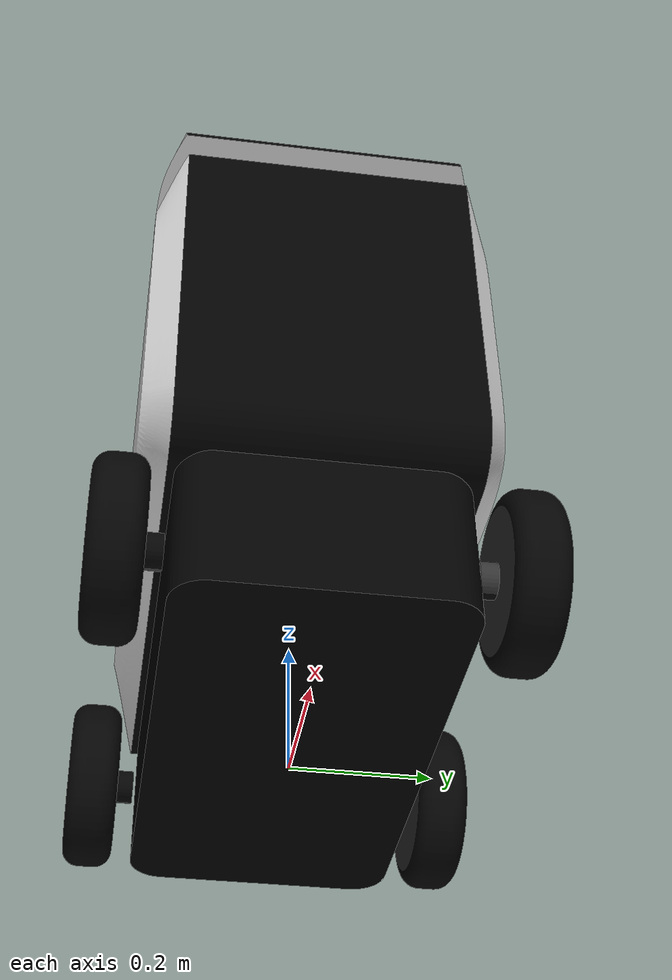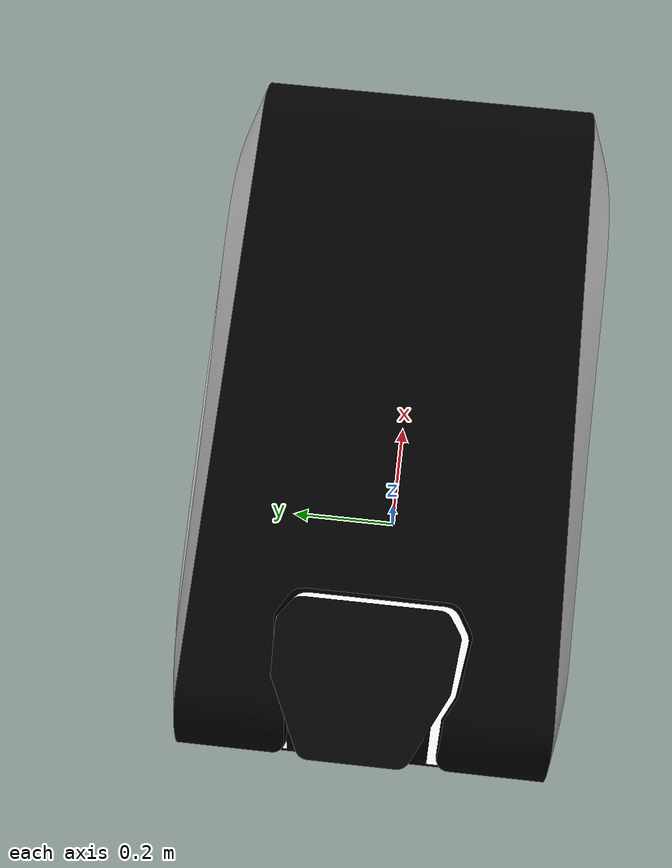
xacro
<?xml version="1.0"?>

<robot name="deliverybot" xmlns:xacro="http://wiki.ros.org/xacro">
    <xacro:include
        filename="$(find deliverybot_description)/models/deliverybot/xacro/deliverybot_joints.xacro" />
    <xacro:include
        filename="$(find deliverybot_description)/models/deliverybot/xacro/deliverybot_control.xacro" />
    <xacro:property name="robot_namespace" value="/deliverybot" />

    <!-- Gazebo Plugins -->
    <gazebo>
        <plugin name="gazebo_ros2_control" filename="libgazebo_ros2_control.so">
            <robotNamespace>${robot_namespace}</robotNamespace>
            <parameters>$(find deliverybot_description)/models/deliverybot/config/controllers.yaml</parameters>
        </plugin>
    </gazebo>

    <!-- Math Constants -->
    <xacro:property name="deg_to_rad" value="0.01745329251994329577" />
    <xacro:property name="steer_limhigh_deg" value="30" />
    <xacro:property name="steer_limlow_deg" value="-30" />
    <!-- Robot Base Dimensions -->
    <xacro:property name="base_length" value="0.85" />
    <xacro:property name="base_width" value="0.35" />
    <xacro:property name="base_mass" value="72.3" />

    <!-- Wheel Link Dimensions -->
    <xacro:property name="wheel_radius" value="0.125" />
    <xacro:property name="wheel_thickness" value="0.1" />
    <xacro:property name="wheel_mass" value="3.5" />

    <!-- Steering Link Dimensions -->
    <xacro:property name="steer_radius" value="0.1" />
    <xacro:property name="steer_thickness" value="0.02" />
    <xacro:property name="steer_mass" value="1" />

    <!-- Velocity and Movement -->
    <xacro:property name="velocity_limlow" value="-5.0" />
    <xacro:property name="velocity_limhigh" value="8.0" />

    <!-- Axle Positions -->
    <xacro:property name="axle_length_offset" value="0.125" />
    <xacro:property name="axle_width_offset" value="0.1" />
    <xacro:property name="steer_offset" value="-0.15" />

    <!-- Dummy Link -->
    <link name="base_footprint">
        <origin xyz="0 0 0" rpy="0 0 0" />
    </link>

    <!-- Base Link -->
    <link name="base_link">
        <visual>
            <origin xyz="0 0 0" rpy="0 0 ${-pi/2}" />
            <geometry>
                <mesh
                    filename="package://deliverybot_description/models/deliverybot/meshes/EVA_Body.dae" />
            </geometry>
        </visual>
        <collision>
            <origin xyz="0 0 0" rpy="0 0 ${-pi/2}" />
            <geometry>
                <mesh
                    filename="package://deliverybot_description/models/deliverybot/meshes/EVA_Body.dae" />
            </geometry>
        </collision>
        <inertial>
            <origin xyz="0 0 0" rpy="0 0 ${-pi/2}" />
            <mass value="64.3" />
            <inertia ixx="8.303" ixy="0" ixz="0" iyy="5.468" iyz="0.00" izz="6.02" />
        </inertial>
    </link>
    <!-- Dummy Joint -->
    <joint name="base_joint" type="fixed">
        <origin xyz="0 0 0.470" rpy="0 0 0" />
        <parent link="base_footprint" />
        <child link="base_link" />
    </joint>

    <link name="center_steer_link">
        <inertial>
            <origin rpy="0 0 0" xyz="0 0 0" />
            <mass value="${steer_mass}" />
            <inertia
                ixx="${steer_mass * (3.0 * steer_radius * steer_radius + steer_thickness * steer_thickness) / 12.0}"
                ixy="0.0" ixz="0.0"
                iyy="${steer_mass * (3.0 * steer_radius * steer_radius + steer_thickness * steer_thickness) / 12.0}"
                iyz="0.0"
                izz="${steer_mass * (steer_radius * steer_radius) / 2.0}" />
        </inertial>
    </link>
    <joint name="center_steer_joint" type="revolute">
        <parent link="base_link" />
        <child link="center_steer_link" />
        <origin xyz="${base_length/2 - axle_length_offset} 0 -0.345" rpy="0 0 0" />
        <axis xyz="0 0 1" />
        <limit effort="${steer_effort}" lower="${steer_limit_deg * deg_to_rad * -1.0}"
            upper="${steer_limit_deg * deg_to_rad}" velocity="${steer_velocity}" />
    </joint>

    <!-- Steerable Front Wheels -->
    <xacro:front_wheel_lr
        name="front_right"
        parent="base"
        reflect="-1"
        wheel_radius="${wheel_radius}"
        wheel_thickness="${wheel_thickness}"
        wheel_mass="${wheel_mass}"
        steer_radius="${steer_radius}"
        steer_thickness="${steer_thickness}"
        steer_mass="${steer_mass}"
        base_length="${base_length}"
        base_width="${base_width}"
        axle_length_offset="${axle_length_offset}"
        axle_width_offset="${axle_width_offset}"
        steer_height="${wheel_radius+steer_offset}">
    </xacro:front_wheel_lr>
    <xacro:front_wheel_lr
        name="front_left"
        parent="base"
        reflect="1"
        wheel_radius="${wheel_radius}"
        wheel_thickness="${wheel_thickness}"
        wheel_mass="${wheel_mass}"
        steer_radius="${steer_radius}"
        steer_thickness="${steer_thickness}"
        steer_mass="${steer_mass}"
        base_length="${base_length}"
        base_width="${base_width}"
        axle_length_offset="${axle_length_offset}"
        axle_width_offset="${axle_width_offset}"
        steer_height="${wheel_radius+steer_offset}">
    </xacro:front_wheel_lr>

    <xacro:rear_wheel_lr
        name="rear_right"
        parent="base"
        reflect="-1"
        wheel_radius="${wheel_radius}"
        wheel_thickness="${wheel_thickness}"
        wheel_mass="${wheel_mass}"
        base_length="${base_length}"
        base_width="${base_width}"
        axle_length_offset="${axle_length_offset}"
        axle_width_offset="${axle_width_offset}">
    </xacro:rear_wheel_lr>
    <xacro:rear_wheel_lr
        name="rear_left"
        parent="base"
        reflect="1"
        wheel_radius="${wheel_radius}"
        wheel_thickness="${wheel_thickness}"
        wheel_mass="${wheel_mass}"
        base_length="${base_length}"
        base_width="${base_width}"
        axle_length_offset="${axle_length_offset}"
        axle_width_offset="${axle_width_offset}">
    </xacro:rear_wheel_lr>
    <xacro:door
        name="door"
        parent="base">
    </xacro:door>

    <ros2_control name="GazeboSystem" type="system">
        <hardware>
            <plugin>gazebo_ros2_control/GazeboSystem</plugin>
        </hardware>
        <xacro:steering_control
            name="center"
            steer_limlow="${steer_limlow_deg * deg_to_rad}"
            steer_limhigh="${steer_limhigh_deg * deg_to_rad}" />
        <xacro:steering_control
            name="front_right"
            steer_limlow="${steer_limlow_deg * deg_to_rad}"
            steer_limhigh="${steer_limhigh_deg * deg_to_rad}" />
        <xacro:velocity_control
            name="front_right"
            velocity_limlow="${velocity_limlow}"
            velocity_limhigh="${velocity_limhigh}" />
        <xacro:steering_control
            name="front_left"
            steer_limlow="${steer_limlow_deg * deg_to_rad}"
            steer_limhigh="${steer_limhigh_deg * deg_to_rad}" />
        <xacro:velocity_control
            name="front_left"
            velocity_limlow="${velocity_limlow}"
            velocity_limhigh="${velocity_limhigh}" />
        <xacro:velocity_control
            name="rear_right"
            velocity_limlow="${velocity_limlow}"
            velocity_limhigh="${velocity_limhigh}" />
        <xacro:velocity_control
            name="rear_left"
            velocity_limlow="${velocity_limlow}"
            velocity_limhigh="${velocity_limhigh}" />
        <xacro:door_control
            name="door"
            door_limlow="${0 * deg_to_rad}"
            door_limhigh="${-90 * deg_to_rad}" />
    </ros2_control>
</robot>

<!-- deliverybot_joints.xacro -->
<robot name="deliverybot" xmlns:xacro="http://wiki.ros.org/xacro">
    <xacro:property name="steer_effort" value="10.0" />
    <xacro:property name="steer_velocity"
        value="0.5" />
    <xacro:property name="steer_limit_deg" value="35.0" />
    <xacro:macro name="front_wheel_lr"
        params="
        name
        parent
        reflect
        wheel_radius
        wheel_thickness
        wheel_mass
        steer_radius
        steer_thickness
        steer_mass
        base_length
        base_width
        axle_length_offset
        axle_width_offset
        steer_height">

        <link name="${name}_steer_link">
            <inertial>
                <origin rpy="0 0 0" xyz="0 0 0" />
                <mass value="${steer_mass}" />
                <inertia
                    ixx="${steer_mass * (3.0 * steer_radius * steer_radius + steer_thickness * steer_thickness) / 12.0}"
                    ixy="0.0" ixz="0.0"
                    iyy="${steer_mass * (3.0 * steer_radius * steer_radius + steer_thickness * steer_thickness) / 12.0}"
                    iyz="0.0"
                    izz="${steer_mass * (steer_radius * steer_radius) / 2.0}" />
            </inertial>
        </link>
        <joint name="${name}_steer_joint" type="revolute">
            <parent link="${parent}_link" />
            <child link="${name}_steer_link" />
            <origin
                xyz="${base_length/2-axle_length_offset} ${reflect*(base_width/2)} ${-0.345}"
                rpy="0 0 0" />
            <axis xyz="0 0 1" />
            <limit effort="${steer_effort}"
                lower="${steer_limit_deg * deg_to_rad * -1.0}"
                upper="${steer_limit_deg * deg_to_rad}"
                velocity="${steer_velocity}" />
        </joint>
        <link name="${name}_wheel_link">
            <visual>
                <origin xyz="0 0 0" rpy="0 0 ${reflect * -pi/2}" />
                <geometry>
                    <mesh
                        filename="package://deliverybot_description/models/deliverybot/meshes/EVA_Wheel.dae" />
                </geometry>
            </visual>
            <collision>
                <origin xyz="0 0 0" rpy="0 0 ${reflect * -pi/2}" />
                <geometry>
                    <mesh
                        filename="package://deliverybot_description/models/deliverybot/meshes/EVA_Wheel.dae" />
                </geometry>
                <surface>
                    <friction>
                        <ode>
                            <mu>0.7</mu>
                            <mu2>0.7</mu2>
                        </ode>
                    </friction>
                </surface>
            </collision>
            <inertial>
                <origin xyz="0 0 0" rpy="0 0 0" />
                <mass value="3.512" />
                <inertia ixx="0.02665" ixy="0" ixz="0" iyy="0.0148" iyz="0" izz="0.01479" />
            </inertial>
        </link>
        <joint name="${name}_wheel_joint" type="continuous">
            <parent link="${name}_steer_link" />
            <child link="${name}_wheel_link" />
            <origin xyz="0 ${reflect * (wheel_thickness)} 0" rpy="0 0 0" />
            <axis xyz="0 1 0" />
        </joint>
        <gazebo reference="${name}_steer_link">
            <mu1 value="2.0" />
            <mu2 value="2.0" />
            <kp value="10000000.0" />
            <kd value="1.0" />
            <fdir1 value="0 1 0" />
        </gazebo>

        <gazebo reference="${name}_wheel_link">
            <mu1 value="2.0" />
            <mu2 value="2.0" />
            <kp value="10000000.0" />
            <kd value="1.0" />
            <fdir1 value="0 1 0" />
        </gazebo>
    </xacro:macro>
    <!-- Rear Wheel Links -->
    <xacro:macro name="rear_wheel_lr"
        params="
        name
        parent
        reflect
        wheel_radius
        wheel_thickness
        wheel_mass
        base_length
        base_width
        axle_length_offset
        axle_width_offset">
        <link name="${name}_wheel_link">
            <visual>
                <origin xyz="0 0 0" rpy="0 0 ${reflect * -pi/2}" />
                <geometry>
                    <mesh
                        filename="package://deliverybot_description/models/deliverybot/meshes/EVA_Wheel.dae" />
                </geometry>
            </visual>
            <collision>
                <origin xyz="0 0 0" rpy="0 0 ${reflect * -pi/2}" />
                <geometry>
                    <mesh
                        filename="package://deliverybot_description/models/deliverybot/meshes/EVA_Wheel.dae" />
                </geometry>
                <surface>
                    <friction>
                        <ode>
                            <mu>0.7</mu>
                            <mu2>0.7</mu2>
                        </ode>
                    </friction>
                </surface>
            </collision>
            <inertial>
                <origin xyz="0 0 0" rpy="0 0 ${reflect * -pi/2}" />
                <mass value="3.512" />
                <inertia ixx="0.02665" ixy="0" ixz="0" iyy="0.0148" iyz="0" izz="0.01479" />
            </inertial>

        </link>
        <joint name="${name}_wheel_joint" type="continuous">
            <parent link="${parent}_link" />
            <child link="${name}_wheel_link" />
            <origin
                xyz="${-(base_length/2-axle_length_offset)} ${reflect*(base_width/2 + wheel_thickness)} ${-0.345}"
                rpy="0 0 0" />
            <axis xyz="0 1 0" />
        </joint>
        <gazebo reference="${name}_wheel_link">
            <mu1 value="2.0" />
            <mu2 value="2.0" />
            <kp value="10000000.0" />
            <kd value="1.0" />
            <fdir1 value="0 1 0" />
        </gazebo>
    </xacro:macro>
    <xacro:macro name="door"
        params="
        name
        parent">
        <link name="${name}_link">
            <visual>
                <geometry>
                    <mesh
                        filename="package://deliverybot_description/models/deliverybot/meshes/EVA_Lid.dae" />
                </geometry>
                <origin rpy="0 0 ${-pi/2}" xyz="0.400 -0.002550 0.01750" />
            </visual>
            <collision>
                <origin rpy="0 0 ${-pi/2}" xyz="0.400 -0.002550 0.01750" />
                <geometry>
                    <mesh
                        filename="package://deliverybot_description/models/deliverybot/meshes/EVA_Lid.dae" />
                </geometry>
            </collision>
            <inertial>
                <origin rpy="0 0 0" xyz="0 0 0" />
                <mass value="8" />
                <inertia ixx="0.4381" ixy="0" ixz="0" iyy="0.1637" iyz="0.005" izz="0.6" />
            </inertial>
        </link>
        <joint name="${name}_joint" type="revolute">
            <limit lower="0" upper="-1.5708" effort="100" velocity="0.5" />
            <origin rpy="0 0 0" xyz="-0.415 0 0.35250" />
            <parent link="${parent}_link" />
            <child link="${name}_link" />
            <axis xyz="0 1 0" rpy="0 0 0" />
        </joint>
    </xacro:macro>
</robot>
